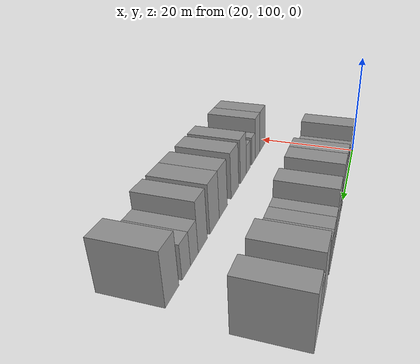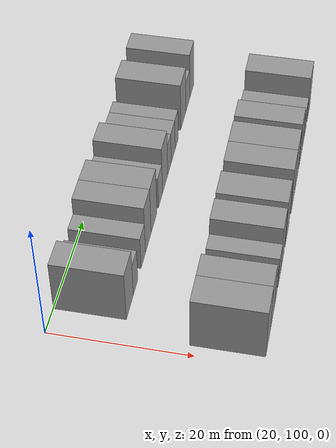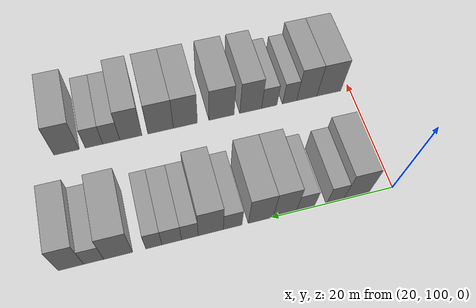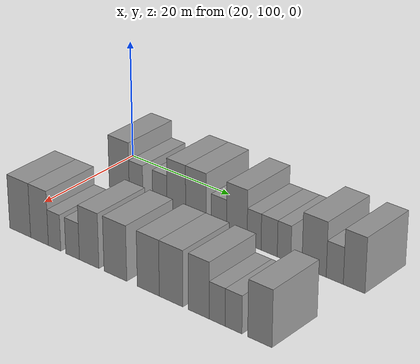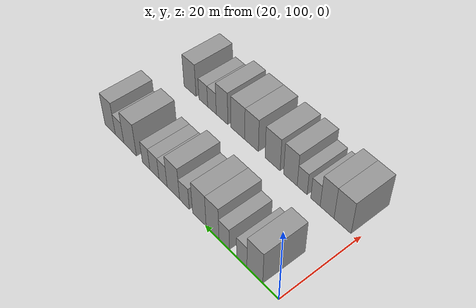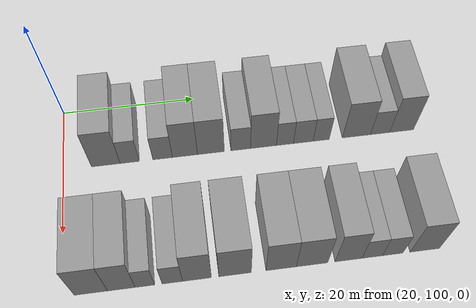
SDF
<sdf version="1.6">
 <world name="default">
  <model name="building_78">
   <static>1</static>
   <pose>25.0000 106.2235 0 0.000000 0.000000 0.000000</pose>
   <link name="link">
    <pose>0 0 4.50 0 0 0</pose>
    <collision name="collision"><geometry><box><size>10.0000 4.2032 9.0000</size></box></geometry></collision>
    <visual name="visual">
     <cast_shadows>0</cast_shadows>
     <geometry><box><size>10.0000 4.2032 9.0000</size></box></geometry>
     <material>
      <script>
       <uri>model://grey_wall/materials/scripts</uri>
       <uri>model://grey_wall/materials/textures</uri>
       <name>vrc/grey_wall</name>
      </script>
     </material>
    </visual>
   </link>
  </model>
  <model name="building_79">
   <static>1</static>
   <pose>25.0000 109.7305 0 0.000000 0.000000 0.000000</pose>
   <link name="link">
    <pose>0 0 3.00 0 0 0</pose>
    <collision name="collision"><geometry><box><size>10.0000 2.8109 6.0000</size></box></geometry></collision>
    <visual name="visual">
     <cast_shadows>0</cast_shadows>
     <geometry><box><size>10.0000 2.8109 6.0000</size></box></geometry>
     <material>
      <script>
       <uri>model://grey_wall/materials/scripts</uri>
       <uri>model://grey_wall/materials/textures</uri>
       <name>vrc/grey_wall</name>
      </script>
     </material>
    </visual>
   </link>
  </model>
  <model name="building_80">
   <static>1</static>
   <pose>25.0000 114.5892 0 0.000000 0.000000 0.000000</pose>
   <link name="link">
    <pose>0 0 3.00 0 0 0</pose>
    <collision name="collision"><geometry><box><size>10.0000 2.9066 6.0000</size></box></geometry></collision>
    <visual name="visual">
     <cast_shadows>0</cast_shadows>
     <geometry><box><size>10.0000 2.9066 6.0000</size></box></geometry>
     <material>
      <script>
       <uri>model://grey_wall/materials/scripts</uri>
       <uri>model://grey_wall/materials/textures</uri>
       <name>vrc/grey_wall</name>
      </script>
     </material>
    </visual>
   </link>
  </model>
  <model name="building_81">
   <static>1</static>
   <pose>25.0000 117.9001 0 0.000000 0.000000 0.000000</pose>
   <link name="link">
    <pose>0 0 4.50 0 0 0</pose>
    <collision name="collision"><geometry><box><size>10.0000 3.7151 9.0000</size></box></geometry></collision>
    <visual name="visual">
     <cast_shadows>0</cast_shadows>
     <geometry><box><size>10.0000 3.7151 9.0000</size></box></geometry>
     <material>
      <script>
       <uri>model://grey_wall/materials/scripts</uri>
       <uri>model://grey_wall/materials/textures</uri>
       <name>vrc/grey_wall</name>
      </script>
     </material>
    </visual>
   </link>
  </model>
  <model name="building_82">
   <static>1</static>
   <pose>25.0000 121.7579 0 0.000000 0.000000 0.000000</pose>
   <link name="link">
    <pose>0 0 4.50 0 0 0</pose>
    <collision name="collision"><geometry><box><size>10.0000 4.0005 9.0000</size></box></geometry></collision>
    <visual name="visual">
     <cast_shadows>0</cast_shadows>
     <geometry><box><size>10.0000 4.0005 9.0000</size></box></geometry>
     <material>
      <script>
       <uri>model://grey_wall/materials/scripts</uri>
       <uri>model://grey_wall/materials/textures</uri>
       <name>vrc/grey_wall</name>
      </script>
     </material>
    </visual>
   </link>
  </model>
  <model name="building_83">
   <static>1</static>
   <pose>25.0000 126.2289 0 0.000000 0.000000 0.000000</pose>
   <link name="link">
    <pose>0 0 3.00 0 0 0</pose>
    <collision name="collision"><geometry><box><size>10.0000 2.9415 6.0000</size></box></geometry></collision>
    <visual name="visual">
     <cast_shadows>0</cast_shadows>
     <geometry><box><size>10.0000 2.9415 6.0000</size></box></geometry>
     <material>
      <script>
       <uri>model://grey_wall/materials/scripts</uri>
       <uri>model://grey_wall/materials/textures</uri>
       <name>vrc/grey_wall</name>
      </script>
     </material>
    </visual>
   </link>
  </model>
  <model name="building_84">
   <static>1</static>
   <pose>25.0000 129.6538 0 0.000000 0.000000 0.000000</pose>
   <link name="link">
    <pose>0 0 4.50 0 0 0</pose>
    <collision name="collision"><geometry><box><size>10.0000 3.9083 9.0000</size></box></geometry></collision>
    <visual name="visual">
     <cast_shadows>0</cast_shadows>
     <geometry><box><size>10.0000 3.9083 9.0000</size></box></geometry>
     <material>
      <script>
       <uri>model://grey_wall/materials/scripts</uri>
       <uri>model://grey_wall/materials/textures</uri>
       <name>vrc/grey_wall</name>
      </script>
     </material>
    </visual>
   </link>
  </model>
  <model name="building_85">
   <static>1</static>
   <pose>25.0000 132.9072 0 0.000000 0.000000 0.000000</pose>
   <link name="link">
    <pose>0 0 3.00 0 0 0</pose>
    <collision name="collision"><geometry><box><size>10.0000 2.5983 6.0000</size></box></geometry></collision>
    <visual name="visual">
     <cast_shadows>0</cast_shadows>
     <geometry><box><size>10.0000 2.5983 6.0000</size></box></geometry>
     <material>
      <script>
       <uri>model://grey_wall/materials/scripts</uri>
       <uri>model://grey_wall/materials/textures</uri>
       <name>vrc/grey_wall</name>
      </script>
     </material>
    </visual>
   </link>
  </model>
  <model name="building_86">
   <static>1</static>
   <pose>25.0000 135.7008 0 0.000000 0.000000 0.000000</pose>
   <link name="link">
    <pose>0 0 3.00 0 0 0</pose>
    <collision name="collision"><geometry><box><size>10.0000 2.9889 6.0000</size></box></geometry></collision>
    <visual name="visual">
     <cast_shadows>0</cast_shadows>
     <geometry><box><size>10.0000 2.9889 6.0000</size></box></geometry>
     <material>
      <script>
       <uri>model://grey_wall/materials/scripts</uri>
       <uri>model://grey_wall/materials/textures</uri>
       <name>vrc/grey_wall</name>
      </script>
     </material>
    </visual>
   </link>
  </model>
  <model name="building_87">
   <static>1</static>
   <pose>25.0000 138.4334 0 0.000000 0.000000 0.000000</pose>
   <link name="link">
    <pose>0 0 3.00 0 0 0</pose>
    <collision name="collision"><geometry><box><size>10.0000 2.4765 6.0000</size></box></geometry></collision>
    <visual name="visual">
     <cast_shadows>0</cast_shadows>
     <geometry><box><size>10.0000 2.4765 6.0000</size></box></geometry>
     <material>
      <script>
       <uri>model://grey_wall/materials/scripts</uri>
       <uri>model://grey_wall/materials/textures</uri>
       <name>vrc/grey_wall</name>
      </script>
     </material>
    </visual>
   </link>
  </model>
  <model name="building_88">
   <static>1</static>
   <pose>25.0000 143.8302 0 0.000000 0.000000 0.000000</pose>
   <link name="link">
    <pose>0 0 4.50 0 0 0</pose>
    <collision name="collision"><geometry><box><size>10.0000 4.3169 9.0000</size></box></geometry></collision>
    <visual name="visual">
     <cast_shadows>0</cast_shadows>
     <geometry><box><size>10.0000 4.3169 9.0000</size></box></geometry>
     <material>
      <script>
       <uri>model://grey_wall/materials/scripts</uri>
       <uri>model://grey_wall/materials/textures</uri>
       <name>vrc/grey_wall</name>
      </script>
     </material>
    </visual>
   </link>
  </model>
  <model name="building_89">
   <static>1</static>
   <pose>25.0000 147.4810 0 0.000000 0.000000 0.000000</pose>
   <link name="link">
    <pose>0 0 3.00 0 0 0</pose>
    <collision name="collision"><geometry><box><size>10.0000 2.9848 6.0000</size></box></geometry></collision>
    <visual name="visual">
     <cast_shadows>0</cast_shadows>
     <geometry><box><size>10.0000 2.9848 6.0000</size></box></geometry>
     <material>
      <script>
       <uri>model://grey_wall/materials/scripts</uri>
       <uri>model://grey_wall/materials/textures</uri>
       <name>vrc/grey_wall</name>
      </script>
     </material>
    </visual>
   </link>
  </model>
  <model name="building_90">
   <static>1</static>
   <pose>25.0000 150.8364 0 0.000000 0.000000 0.000000</pose>
   <link name="link">
    <pose>0 0 4.50 0 0 0</pose>
    <collision name="collision"><geometry><box><size>10.0000 3.7260 9.0000</size></box></geometry></collision>
    <visual name="visual">
     <cast_shadows>0</cast_shadows>
     <geometry><box><size>10.0000 3.7260 9.0000</size></box></geometry>
     <material>
      <script>
       <uri>model://grey_wall/materials/scripts</uri>
       <uri>model://grey_wall/materials/textures</uri>
       <name>vrc/grey_wall</name>
      </script>
     </material>
    </visual>
   </link>
  </model>
  <model name="building_177">
   <static>1</static>
   <pose>44.0000 103.7774 0 0.000000 0.000000 0.000000</pose>
   <link name="link">
    <pose>0 0 4.50 0 0 0</pose>
    <collision name="collision"><geometry><box><size>10.0000 4.3782 9.0000</size></box></geometry></collision>
    <visual name="visual">
     <cast_shadows>0</cast_shadows>
     <geometry><box><size>10.0000 4.3782 9.0000</size></box></geometry>
     <material>
      <script>
       <uri>model://grey_wall/materials/scripts</uri>
       <uri>model://grey_wall/materials/textures</uri>
       <name>vrc/grey_wall</name>
      </script>
     </material>
    </visual>
   </link>
  </model>
  <model name="building_178">
   <static>1</static>
   <pose>44.0000 107.7980 0 0.000000 0.000000 0.000000</pose>
   <link name="link">
    <pose>0 0 4.50 0 0 0</pose>
    <collision name="collision"><geometry><box><size>10.0000 3.6632 9.0000</size></box></geometry></collision>
    <visual name="visual">
     <cast_shadows>0</cast_shadows>
     <geometry><box><size>10.0000 3.6632 9.0000</size></box></geometry>
     <material>
      <script>
       <uri>model://grey_wall/materials/scripts</uri>
       <uri>model://grey_wall/materials/textures</uri>
       <name>vrc/grey_wall</name>
      </script>
     </material>
    </visual>
   </link>
  </model>
  <model name="building_179">
   <static>1</static>
   <pose>44.0000 110.8971 0 0.000000 0.000000 0.000000</pose>
   <link name="link">
    <pose>0 0 3.00 0 0 0</pose>
    <collision name="collision"><geometry><box><size>10.0000 2.5349 6.0000</size></box></geometry></collision>
    <visual name="visual">
     <cast_shadows>0</cast_shadows>
     <geometry><box><size>10.0000 2.5349 6.0000</size></box></geometry>
     <material>
      <script>
       <uri>model://grey_wall/materials/scripts</uri>
       <uri>model://grey_wall/materials/textures</uri>
       <name>vrc/grey_wall</name>
      </script>
     </material>
    </visual>
   </link>
  </model>
  <model name="building_180">
   <static>1</static>
   <pose>44.0000 114.5311 0 0.000000 0.000000 0.000000</pose>
   <link name="link">
    <pose>0 0 3.00 0 0 0</pose>
    <collision name="collision"><geometry><box><size>10.0000 2.7332 6.0000</size></box></geometry></collision>
    <visual name="visual">
     <cast_shadows>0</cast_shadows>
     <geometry><box><size>10.0000 2.7332 6.0000</size></box></geometry>
     <material>
      <script>
       <uri>model://grey_wall/materials/scripts</uri>
       <uri>model://grey_wall/materials/textures</uri>
       <name>vrc/grey_wall</name>
      </script>
     </material>
    </visual>
   </link>
  </model>
  <model name="building_181">
   <static>1</static>
   <pose>44.0000 117.8230 0 0.000000 0.000000 0.000000</pose>
   <link name="link">
    <pose>0 0 4.50 0 0 0</pose>
    <collision name="collision"><geometry><box><size>10.0000 3.8507 9.0000</size></box></geometry></collision>
    <visual name="visual">
     <cast_shadows>0</cast_shadows>
     <geometry><box><size>10.0000 3.8507 9.0000</size></box></geometry>
     <material>
      <script>
       <uri>model://grey_wall/materials/scripts</uri>
       <uri>model://grey_wall/materials/textures</uri>
       <name>vrc/grey_wall</name>
      </script>
     </material>
    </visual>
   </link>
  </model>
  <model name="building_182">
   <static>1</static>
   <pose>44.0000 122.9370 0 0.000000 0.000000 0.000000</pose>
   <link name="link">
    <pose>0 0 4.50 0 0 0</pose>
    <collision name="collision"><geometry><box><size>10.0000 4.3772 9.0000</size></box></geometry></collision>
    <visual name="visual">
     <cast_shadows>0</cast_shadows>
     <geometry><box><size>10.0000 4.3772 9.0000</size></box></geometry>
     <material>
      <script>
       <uri>model://grey_wall/materials/scripts</uri>
       <uri>model://grey_wall/materials/textures</uri>
       <name>vrc/grey_wall</name>
      </script>
     </material>
    </visual>
   </link>
  </model>
  <model name="building_183">
   <static>1</static>
   <pose>44.0000 129.1836 0 0.000000 0.000000 0.000000</pose>
   <link name="link">
    <pose>0 0 4.50 0 0 0</pose>
    <collision name="collision"><geometry><box><size>10.0000 4.1159 9.0000</size></box></geometry></collision>
    <visual name="visual">
     <cast_shadows>0</cast_shadows>
     <geometry><box><size>10.0000 4.1159 9.0000</size></box></geometry>
     <material>
      <script>
       <uri>model://grey_wall/materials/scripts</uri>
       <uri>model://grey_wall/materials/textures</uri>
       <name>vrc/grey_wall</name>
      </script>
     </material>
    </visual>
   </link>
  </model>
  <model name="building_184">
   <static>1</static>
   <pose>44.0000 133.4093 0 0.000000 0.000000 0.000000</pose>
   <link name="link">
    <pose>0 0 4.50 0 0 0</pose>
    <collision name="collision"><geometry><box><size>10.0000 4.3355 9.0000</size></box></geometry></collision>
    <visual name="visual">
     <cast_shadows>0</cast_shadows>
     <geometry><box><size>10.0000 4.3355 9.0000</size></box></geometry>
     <material>
      <script>
       <uri>model://grey_wall/materials/scripts</uri>
       <uri>model://grey_wall/materials/textures</uri>
       <name>vrc/grey_wall</name>
      </script>
     </material>
    </visual>
   </link>
  </model>
  <model name="building_185">
   <static>1</static>
   <pose>44.0000 138.4371 0 0.000000 0.000000 0.000000</pose>
   <link name="link">
    <pose>0 0 4.50 0 0 0</pose>
    <collision name="collision"><geometry><box><size>10.0000 3.7201 9.0000</size></box></geometry></collision>
    <visual name="visual">
     <cast_shadows>0</cast_shadows>
     <geometry><box><size>10.0000 3.7201 9.0000</size></box></geometry>
     <material>
      <script>
       <uri>model://grey_wall/materials/scripts</uri>
       <uri>model://grey_wall/materials/textures</uri>
       <name>vrc/grey_wall</name>
      </script>
     </material>
    </visual>
   </link>
  </model>
  <model name="building_186">
   <static>1</static>
   <pose>44.0000 141.7071 0 0.000000 0.000000 0.000000</pose>
   <link name="link">
    <pose>0 0 3.00 0 0 0</pose>
    <collision name="collision"><geometry><box><size>10.0000 2.8200 6.0000</size></box></geometry></collision>
    <visual name="visual">
     <cast_shadows>0</cast_shadows>
     <geometry><box><size>10.0000 2.8200 6.0000</size></box></geometry>
     <material>
      <script>
       <uri>model://grey_wall/materials/scripts</uri>
       <uri>model://grey_wall/materials/textures</uri>
       <name>vrc/grey_wall</name>
      </script>
     </material>
    </visual>
   </link>
  </model>
  <model name="building_187">
   <static>1</static>
   <pose>44.0000 144.5674 0 0.000000 0.000000 0.000000</pose>
   <link name="link">
    <pose>0 0 3.00 0 0 0</pose>
    <collision name="collision"><geometry><box><size>10.0000 2.9006 6.0000</size></box></geometry></collision>
    <visual name="visual">
     <cast_shadows>0</cast_shadows>
     <geometry><box><size>10.0000 2.9006 6.0000</size></box></geometry>
     <material>
      <script>
       <uri>model://grey_wall/materials/scripts</uri>
       <uri>model://grey_wall/materials/textures</uri>
       <name>vrc/grey_wall</name>
      </script>
     </material>
    </visual>
   </link>
  </model>
  <model name="building_188">
   <static>1</static>
   <pose>44.0000 149.0799 0 0.000000 0.000000 0.000000</pose>
   <link name="link">
    <pose>0 0 4.50 0 0 0</pose>
    <collision name="collision"><geometry><box><size>10.0000 4.1244 9.0000</size></box></geometry></collision>
    <visual name="visual">
     <cast_shadows>0</cast_shadows>
     <geometry><box><size>10.0000 4.1244 9.0000</size></box></geometry>
     <material>
      <script>
       <uri>model://grey_wall/materials/scripts</uri>
       <uri>model://grey_wall/materials/textures</uri>
       <name>vrc/grey_wall</name>
      </script>
     </material>
    </visual>
   </link>
  </model>
 </world>
</sdf>
